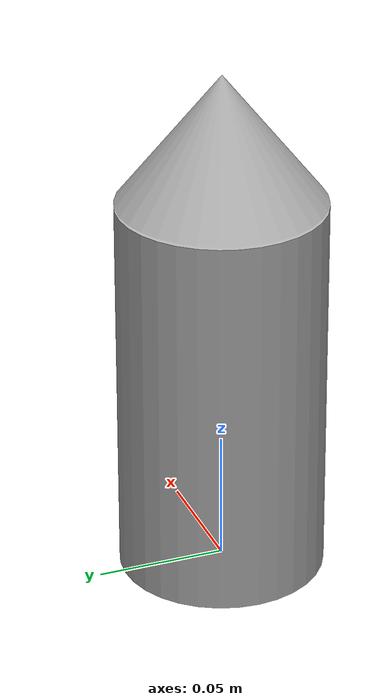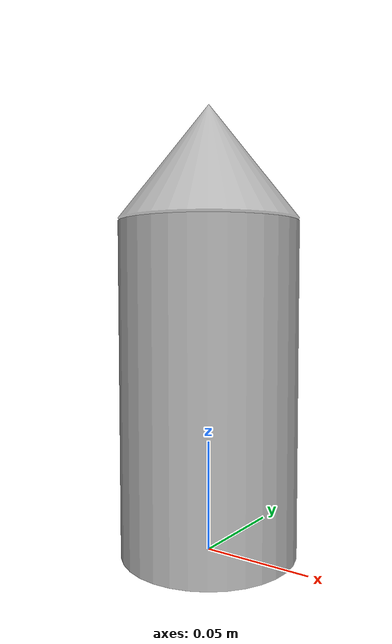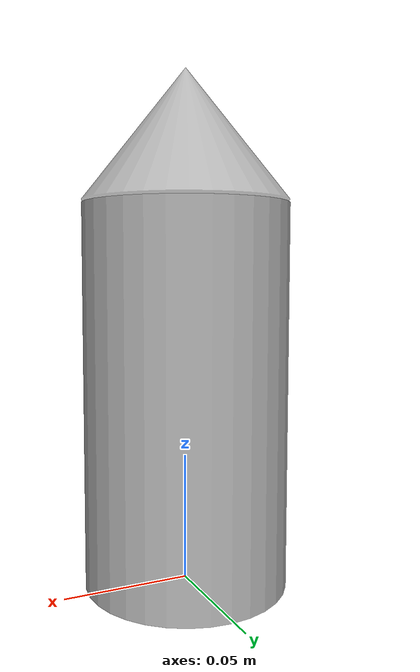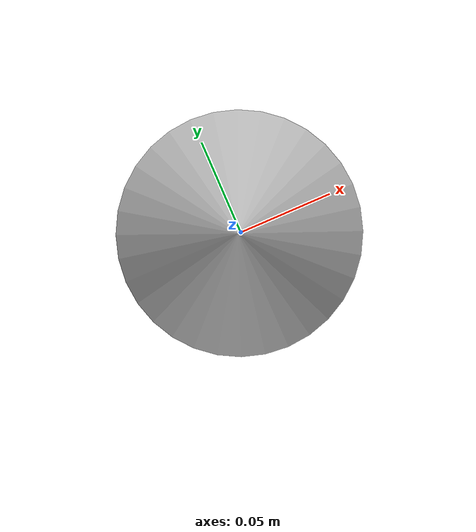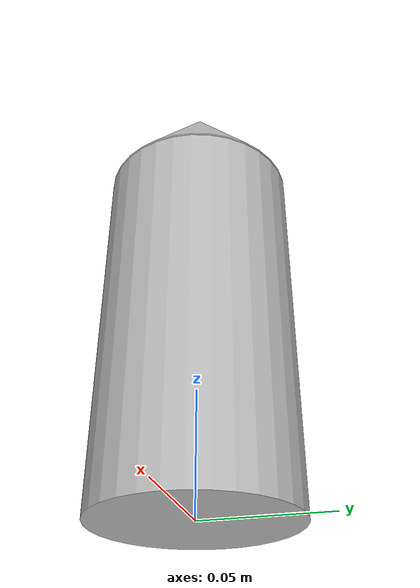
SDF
<?xml version="1.0" ?>
<sdf version="1.5">
  <model name="cylinder">
    <static>true</static>
    <link name="link">
      <collision name="collision">
        <geometry>
          <mesh>
            <uri>model://cylinder/meshes/cylinder.dae</uri>
          </mesh>
        </geometry>
      </collision>
      <visual name="visual">
        <geometry>
          <mesh>
            <uri>model://cylinder/meshes/cylinder.dae</uri>
          </mesh>
        </geometry>
      </visual>
    </link>
  </model>
</sdf>
